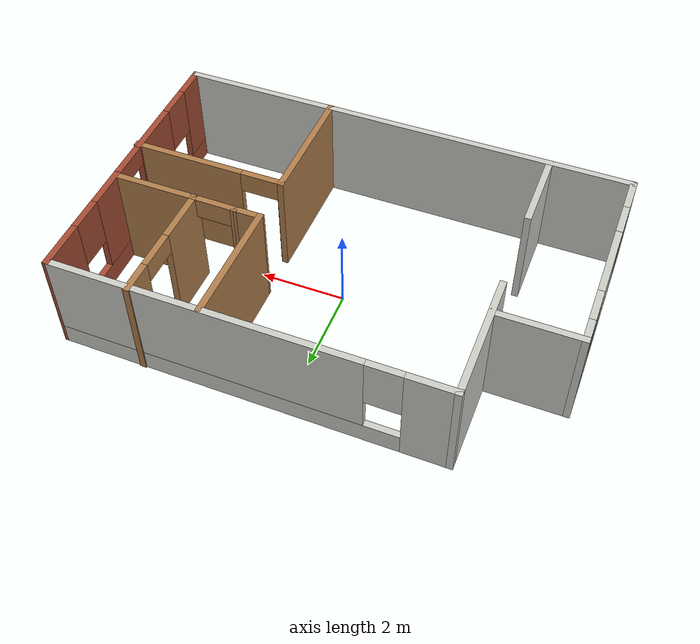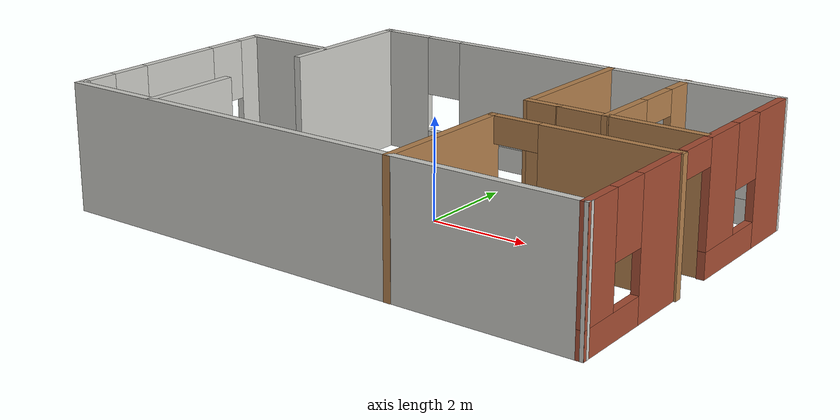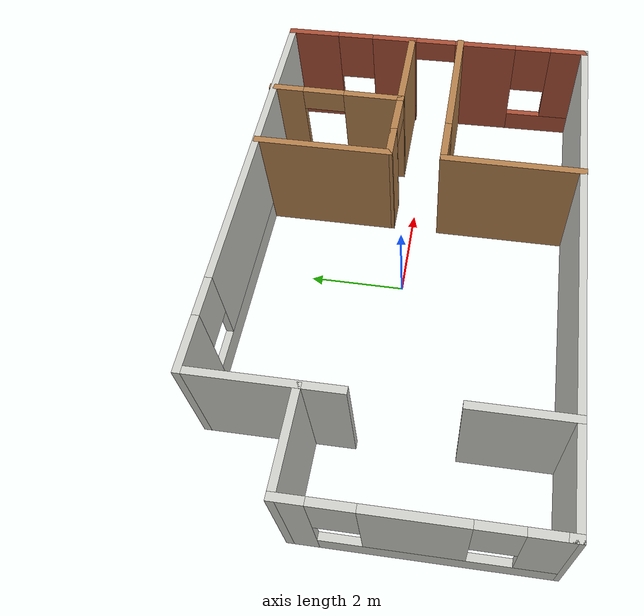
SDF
<?xml version='1.0'?>
<sdf version='1.7'>
  <model name='apartment'>
    <pose>-0.102938 -0.084341 0 0 -0 0</pose>
    <link name='Wall_0'>
      <collision name='Wall_0_Collision'>
        <geometry>
          <box>
            <size>3 0.15 2.5</size>
          </box>
        </geometry>
        <pose>0 0 1.25 0 -0 0</pose>
      </collision>
      <visual name='Wall_0_Visual'>
        <pose>0 0 1.25 0 -0 0</pose>
        <geometry>
          <box>
            <size>3 0.15 2.5</size>
          </box>
        </geometry>
        <material>
          <script>
            <uri>file://media/materials/scripts/gazebo.material</uri>
            <name>Gazebo/CeilingTiled</name>
          </script>
          <ambient>0.996078 0.47451 0.0196078 1</ambient>
        </material>
        <meta>
          <layer>0</layer>
        </meta>
      </visual>
      <pose>-3.54541 1.95227 0 0 -0 -1.5708</pose>
    </link>
    <link name='Wall_11'>
      <pose>5.36447 -0.008648 0 0 -0 -1.55311</pose>
      <visual name='Wall_11_Visual_0'>
        <pose>-2.88062 0 1.25 0 -0 0</pose>
        <geometry>
          <box>
            <size>1.16165 0.15 2.5</size>
          </box>
        </geometry>
        <material>
          <script>
            <uri>file://media/materials/scripts/gazebo.material</uri>
            <name>Gazebo/Bricks</name>
          </script>
          <ambient>1 1 1 1</ambient>
        </material>
        <meta>
          <layer>0</layer>
        </meta>
      </visual>
      <collision name='Wall_11_Collision_0'>
        <geometry>
          <box>
            <size>1.16165 0.15 2.5</size>
          </box>
        </geometry>
        <pose>-2.88062 0 1.25 0 -0 0</pose>
      </collision>
      <visual name='Wall_11_Visual_1'>
        <pose>1.12075 0 1.25 0 -0 0</pose>
        <geometry>
          <box>
            <size>1.38976 0.15 2.5</size>
          </box>
        </geometry>
        <material>
          <script>
            <uri>file://media/materials/scripts/gazebo.material</uri>
            <name>Gazebo/Bricks</name>
          </script>
          <ambient>1 1 1 1</ambient>
        </material>
        <meta>
          <layer>0</layer>
        </meta>
      </visual>
      <collision name='Wall_11_Collision_1'>
        <geometry>
          <box>
            <size>1.38976 0.15 2.5</size>
          </box>
        </geometry>
        <pose>1.12075 0 1.25 0 -0 0</pose>
      </collision>
      <visual name='Wall_11_Visual_2'>
        <pose>-1.38697 0 0.25 0 -0 0</pose>
        <geometry>
          <box>
            <size>1.82566 0.15 0.5</size>
          </box>
        </geometry>
        <material>
          <script>
            <uri>file://media/materials/scripts/gazebo.material</uri>
            <name>Gazebo/Bricks</name>
          </script>
          <ambient>1 1 1 1</ambient>
        </material>
        <meta>
          <layer>0</layer>
        </meta>
      </visual>
      <collision name='Wall_11_Collision_2'>
        <geometry>
          <box>
            <size>1.82566 0.15 0.5</size>
          </box>
        </geometry>
        <pose>-1.38697 0 0.25 0 -0 0</pose>
      </collision>
      <visual name='Wall_11_Visual_3'>
        <pose>2.63854 0 0.25 0 -0 0</pose>
        <geometry>
          <box>
            <size>1.64582 0.15 0.5</size>
          </box>
        </geometry>
        <material>
          <script>
            <uri>file://media/materials/scripts/gazebo.material</uri>
            <name>Gazebo/Bricks</name>
          </script>
          <ambient>1 1 1 1</ambient>
        </material>
        <meta>
          <layer>0</layer>
        </meta>
      </visual>
      <collision name='Wall_11_Collision_3'>
        <geometry>
          <box>
            <size>1.64582 0.15 0.5</size>
          </box>
        </geometry>
        <pose>2.63854 0 0.25 0 -0 0</pose>
      </collision>
      <visual name='Wall_11_Visual_4'>
        <pose>-0.986965 0 1.5 0 -0 0</pose>
        <geometry>
          <box>
            <size>1.02566 0.15 2</size>
          </box>
        </geometry>
        <material>
          <script>
            <uri>file://media/materials/scripts/gazebo.material</uri>
            <name>Gazebo/Bricks</name>
          </script>
          <ambient>1 1 1 1</ambient>
        </material>
        <meta>
          <layer>0</layer>
        </meta>
      </visual>
      <collision name='Wall_11_Collision_4'>
        <geometry>
          <box>
            <size>1.02566 0.15 2</size>
          </box>
        </geometry>
        <pose>-0.986965 0 1.5 0 -0 0</pose>
      </collision>
      <visual name='Wall_11_Visual_5'>
        <pose>-0.986965 0 1.5 0 -0 0</pose>
        <geometry>
          <box>
            <size>1.02566 0.15 2</size>
          </box>
        </geometry>
        <material>
          <script>
            <uri>file://media/materials/scripts/gazebo.material</uri>
            <name>Gazebo/Bricks</name>
          </script>
          <ambient>1 1 1 1</ambient>
        </material>
        <meta>
          <layer>0</layer>
        </meta>
      </visual>
      <collision name='Wall_11_Collision_5'>
        <geometry>
          <box>
            <size>1.02566 0.15 2</size>
          </box>
        </geometry>
        <pose>-0.986965 0 1.5 0 -0 0</pose>
      </collision>
      <visual name='Wall_11_Visual_6'>
        <pose>3.03854 0 1.5 0 -0 0</pose>
        <geometry>
          <box>
            <size>0.845819 0.15 2</size>
          </box>
        </geometry>
        <material>
          <script>
            <uri>file://media/materials/scripts/gazebo.material</uri>
            <name>Gazebo/Bricks</name>
          </script>
          <ambient>1 1 1 1</ambient>
        </material>
        <meta>
          <layer>0</layer>
        </meta>
      </visual>
      <collision name='Wall_11_Collision_6'>
        <geometry>
          <box>
            <size>0.845819 0.15 2</size>
          </box>
        </geometry>
        <pose>3.03854 0 1.5 0 -0 0</pose>
      </collision>
      <visual name='Wall_11_Visual_7'>
        <pose>-1.89979 0 1.9 0 -0 0</pose>
        <geometry>
          <box>
            <size>0.8 0.15 1.2</size>
          </box>
        </geometry>
        <material>
          <script>
            <uri>file://media/materials/scripts/gazebo.material</uri>
            <name>Gazebo/Bricks</name>
          </script>
          <ambient>1 1 1 1</ambient>
        </material>
        <meta>
          <layer>0</layer>
        </meta>
      </visual>
      <collision name='Wall_11_Collision_7'>
        <geometry>
          <box>
            <size>0.8 0.15 1.2</size>
          </box>
        </geometry>
        <pose>-1.89979 0 1.9 0 -0 0</pose>
      </collision>
      <visual name='Wall_11_Visual_8'>
        <pose>2.21563 0 1.9 0 -0 0</pose>
        <geometry>
          <box>
            <size>0.8 0.15 1.2</size>
          </box>
        </geometry>
        <material>
          <script>
            <uri>file://media/materials/scripts/gazebo.material</uri>
            <name>Gazebo/Bricks</name>
          </script>
          <ambient>1 1 1 1</ambient>
        </material>
        <meta>
          <layer>0</layer>
        </meta>
      </visual>
      <collision name='Wall_11_Collision_8'>
        <geometry>
          <box>
            <size>0.8 0.15 1.2</size>
          </box>
        </geometry>
        <pose>2.21563 0 1.9 0 -0 0</pose>
      </collision>
      <visual name='Wall_11_Visual_9'>
        <pose>-0.024136 0 2.25 0 -0 0</pose>
        <geometry>
          <box>
            <size>0.9 0.15 0.5</size>
          </box>
        </geometry>
        <material>
          <script>
            <uri>file://media/materials/scripts/gazebo.material</uri>
            <name>Gazebo/Bricks</name>
          </script>
          <ambient>1 1 1 1</ambient>
        </material>
        <meta>
          <layer>0</layer>
        </meta>
      </visual>
      <collision name='Wall_11_Collision_9'>
        <geometry>
          <box>
            <size>0.9 0.15 0.5</size>
          </box>
        </geometry>
        <pose>-0.024136 0 2.25 0 -0 0</pose>
      </collision>
      <visual name='Wall_11_Visual_10'>
        <pose>-0.024136 0 2.25 0 -0 0</pose>
        <geometry>
          <box>
            <size>0.9 0.15 0.5</size>
          </box>
        </geometry>
        <material>
          <script>
            <uri>file://media/materials/scripts/gazebo.material</uri>
            <name>Gazebo/Bricks</name>
          </script>
          <ambient>1 1 1 1</ambient>
        </material>
        <meta>
          <layer>0</layer>
        </meta>
      </visual>
      <collision name='Wall_11_Collision_10'>
        <geometry>
          <box>
            <size>0.9 0.15 0.5</size>
          </box>
        </geometry>
        <pose>-0.024136 0 2.25 0 -0 0</pose>
      </collision>
    </link>
    <link name='Wall_13'>
      <collision name='Wall_13_Collision'>
        <geometry>
          <box>
            <size>2.92929 0.15 2.5</size>
          </box>
        </geometry>
        <pose>0 0 1.25 0 -0 0</pose>
      </collision>
      <visual name='Wall_13_Visual'>
        <pose>0 0 1.25 0 -0 0</pose>
        <geometry>
          <box>
            <size>2.92929 0.15 2.5</size>
          </box>
        </geometry>
        <material>
          <script>
            <uri>file://media/materials/scripts/gazebo.material</uri>
            <name>Gazebo/Wood</name>
          </script>
          <ambient>1 1 1 1</ambient>
        </material>
        <meta>
          <layer>0</layer>
        </meta>
      </visual>
      <pose>1.80753 1.9642 0 0 -0 -1.56862</pose>
    </link>
    <link name='Wall_14'>
      <collision name='Wall_14_Collision'>
        <geometry>
          <box>
            <size>0.75 0.15 2.5</size>
          </box>
        </geometry>
        <pose>0 0 1.25 0 -0 0</pose>
      </collision>
      <visual name='Wall_14_Visual'>
        <pose>0 0 1.25 0 -0 0</pose>
        <geometry>
          <box>
            <size>0.75 0.15 2.5</size>
          </box>
        </geometry>
        <material>
          <script>
            <uri>file://media/materials/scripts/gazebo.material</uri>
            <name>Gazebo/Wood</name>
          </script>
          <ambient>1 1 1 1</ambient>
        </material>
        <meta>
          <layer>0</layer>
        </meta>
      </visual>
      <pose>2.11056 0.574561 0 0 -0 0</pose>
    </link>
    <link name='Wall_17'>
      <pose>3.40242 1.98351 0 0 -0 -1.5708</pose>
      <visual name='Wall_17_Visual_0'>
        <pose>-1.11383 0 1.25 0 -0 0</pose>
        <geometry>
          <box>
            <size>0.760857 0.15 2.5</size>
          </box>
        </geometry>
        <material>
          <script>
            <uri>file://media/materials/scripts/gazebo.material</uri>
            <name>Gazebo/Wood</name>
          </script>
          <ambient>1 1 1 1</ambient>
        </material>
        <meta>
          <layer>0</layer>
        </meta>
      </visual>
      <collision name='Wall_17_Collision_0'>
        <geometry>
          <box>
            <size>0.760857 0.15 2.5</size>
          </box>
        </geometry>
        <pose>-1.11383 0 1.25 0 -0 0</pose>
      </collision>
      <visual name='Wall_17_Visual_1'>
        <pose>0.830428 0 1.25 0 -0 0</pose>
        <geometry>
          <box>
            <size>1.32767 0.15 2.5</size>
          </box>
        </geometry>
        <material>
          <script>
            <uri>file://media/materials/scripts/gazebo.material</uri>
            <name>Gazebo/Wood</name>
          </script>
          <ambient>1 1 1 1</ambient>
        </material>
        <meta>
          <layer>0</layer>
        </meta>
      </visual>
      <collision name='Wall_17_Collision_1'>
        <geometry>
          <box>
            <size>1.32767 0.15 2.5</size>
          </box>
        </geometry>
        <pose>0.830428 0 1.25 0 -0 0</pose>
      </collision>
      <visual name='Wall_17_Visual_2'>
        <pose>-0.283405 0 2.25 0 -0 0</pose>
        <geometry>
          <box>
            <size>0.9 0.15 0.5</size>
          </box>
        </geometry>
        <material>
          <script>
            <uri>file://media/materials/scripts/gazebo.material</uri>
            <name>Gazebo/Wood</name>
          </script>
          <ambient>1 1 1 1</ambient>
        </material>
        <meta>
          <layer>0</layer>
        </meta>
      </visual>
      <collision name='Wall_17_Collision_2'>
        <geometry>
          <box>
            <size>0.9 0.15 0.5</size>
          </box>
        </geometry>
        <pose>-0.283405 0 2.25 0 -0 0</pose>
      </collision>
    </link>
    <link name='Wall_18'>
      <collision name='Wall_18_Collision'>
        <geometry>
          <box>
            <size>2 0.15 2.5</size>
          </box>
        </geometry>
        <pose>0 0 1.25 0 -0 0</pose>
      </collision>
      <visual name='Wall_18_Visual'>
        <pose>0 0 1.25 0 -0 0</pose>
        <geometry>
          <box>
            <size>2 0.15 2.5</size>
          </box>
        </geometry>
        <material>
          <script>
            <uri>file://media/materials/scripts/gazebo.material</uri>
            <name>Gazebo/Wood</name>
          </script>
          <ambient>1 1 1 1</ambient>
        </material>
        <meta>
          <layer>0</layer>
        </meta>
      </visual>
      <pose>4.32742 0.564674 0 0 -0 0</pose>
    </link>
    <link name='Wall_2'>
      <collision name='Wall_2_Collision'>
        <geometry>
          <box>
            <size>2 0.15 2.5</size>
          </box>
        </geometry>
        <pose>0 0 1.25 0 -0 0</pose>
      </collision>
      <visual name='Wall_2_Visual'>
        <pose>0 0 1.25 0 -0 0</pose>
        <geometry>
          <box>
            <size>2 0.15 2.5</size>
          </box>
        </geometry>
        <material>
          <script>
            <uri>file://media/materials/scripts/gazebo.material</uri>
            <name>Gazebo/CeilingTiled</name>
          </script>
          <ambient>0.921569 0.807843 0.615686 1</ambient>
        </material>
        <meta>
          <layer>0</layer>
        </meta>
      </visual>
      <pose>-4.50066 1.30543 0 0 -0 3.14159</pose>
    </link>
    <link name='Wall_20'>
      <collision name='Wall_20_Collision'>
        <geometry>
          <box>
            <size>2 0.15 2.5</size>
          </box>
        </geometry>
        <pose>0 0 1.25 0 -0 0</pose>
      </collision>
      <visual name='Wall_20_Visual'>
        <pose>0 0 1.25 0 -0 0</pose>
        <geometry>
          <box>
            <size>2 0.15 2.5</size>
          </box>
        </geometry>
        <material>
          <script>
            <uri>file://media/materials/scripts/gazebo.material</uri>
            <name>Gazebo/CeilingTiled</name>
          </script>
          <ambient>0.996078 0.47451 0.0196078 1</ambient>
        </material>
        <meta>
          <layer>0</layer>
        </meta>
      </visual>
      <pose>-3.53546 -2.46789 0 0 -0 1.5708</pose>
    </link>
    <link name='Wall_22'>
      <collision name='Wall_22_Collision'>
        <geometry>
          <box>
            <size>3 0.15 2.5</size>
          </box>
        </geometry>
        <pose>0 0 1.25 0 -0 0</pose>
      </collision>
      <visual name='Wall_22_Visual'>
        <pose>0 0 1.25 0 -0 0</pose>
        <geometry>
          <box>
            <size>3 0.15 2.5</size>
          </box>
        </geometry>
        <material>
          <script>
            <uri>file://media/materials/scripts/gazebo.material</uri>
            <name>Gazebo/Wood</name>
          </script>
          <ambient>1 1 1 1</ambient>
        </material>
        <meta>
          <layer>0</layer>
        </meta>
      </visual>
      <pose>1.81362 -1.97778 0 0 -0 1.5708</pose>
    </link>
    <link name='Wall_23'>
      <pose>3.61362 -0.552776 0 0 -0 0</pose>
      <visual name='Wall_23_Visual_0'>
        <pose>-1.80184 0 1.25 0 -0 0</pose>
        <geometry>
          <box>
            <size>0.146318 0.15 2.5</size>
          </box>
        </geometry>
        <material>
          <script>
            <uri>file://media/materials/scripts/gazebo.material</uri>
            <name>Gazebo/Wood</name>
          </script>
          <ambient>1 1 1 1</ambient>
        </material>
        <meta>
          <layer>0</layer>
        </meta>
      </visual>
      <collision name='Wall_23_Collision_0'>
        <geometry>
          <box>
            <size>0.146318 0.15 2.5</size>
          </box>
        </geometry>
        <pose>-1.80184 0 1.25 0 -0 0</pose>
      </collision>
      <visual name='Wall_23_Visual_1'>
        <pose>0.523159 0 1.25 0 -0 0</pose>
        <geometry>
          <box>
            <size>2.70368 0.15 2.5</size>
          </box>
        </geometry>
        <material>
          <script>
            <uri>file://media/materials/scripts/gazebo.material</uri>
            <name>Gazebo/Wood</name>
          </script>
          <ambient>1 1 1 1</ambient>
        </material>
        <meta>
          <layer>0</layer>
        </meta>
      </visual>
      <collision name='Wall_23_Collision_1'>
        <geometry>
          <box>
            <size>2.70368 0.15 2.5</size>
          </box>
        </geometry>
        <pose>0.523159 0 1.25 0 -0 0</pose>
      </collision>
      <visual name='Wall_23_Visual_2'>
        <pose>-1.27868 0 2.25 0 -0 0</pose>
        <geometry>
          <box>
            <size>0.9 0.15 0.5</size>
          </box>
        </geometry>
        <material>
          <script>
            <uri>file://media/materials/scripts/gazebo.material</uri>
            <name>Gazebo/Wood</name>
          </script>
          <ambient>1 1 1 1</ambient>
        </material>
        <meta>
          <layer>0</layer>
        </meta>
      </visual>
      <collision name='Wall_23_Collision_2'>
        <geometry>
          <box>
            <size>0.9 0.15 0.5</size>
          </box>
        </geometry>
        <pose>-1.27868 0 2.25 0 -0 0</pose>
      </collision>
    </link>
    <link name='Wall_25'>
      <pose>2.90649 0.569617 0 0 -0 -0.009968</pose>
      <visual name='Wall_25_Visual_0'>
        <pose>-0.52434 0 1.25 0 -0 0</pose>
        <geometry>
          <box>
            <size>0.09324 0.15 2.5</size>
          </box>
        </geometry>
        <material>
          <script>
            <uri>file://media/materials/scripts/gazebo.material</uri>
            <name>Gazebo/Wood</name>
          </script>
          <ambient>1 1 1 1</ambient>
        </material>
        <meta>
          <layer>0</layer>
        </meta>
      </visual>
      <collision name='Wall_25_Collision_0'>
        <geometry>
          <box>
            <size>0.09324 0.15 2.5</size>
          </box>
        </geometry>
        <pose>-0.52434 0 1.25 0 -0 0</pose>
      </collision>
      <visual name='Wall_25_Visual_1'>
        <pose>0.49662 0 1.25 0 -0 0</pose>
        <geometry>
          <box>
            <size>0.148679 0.15 2.5</size>
          </box>
        </geometry>
        <material>
          <script>
            <uri>file://media/materials/scripts/gazebo.material</uri>
            <name>Gazebo/Wood</name>
          </script>
          <ambient>1 1 1 1</ambient>
        </material>
        <meta>
          <layer>0</layer>
        </meta>
      </visual>
      <collision name='Wall_25_Collision_1'>
        <geometry>
          <box>
            <size>0.148679 0.15 2.5</size>
          </box>
        </geometry>
        <pose>0.49662 0 1.25 0 -0 0</pose>
      </collision>
      <visual name='Wall_25_Visual_2'>
        <pose>-0.02772 0 2.25 0 -0 0</pose>
        <geometry>
          <box>
            <size>0.9 0.15 0.5</size>
          </box>
        </geometry>
        <material>
          <script>
            <uri>file://media/materials/scripts/gazebo.material</uri>
            <name>Gazebo/Wood</name>
          </script>
          <ambient>1 1 1 1</ambient>
        </material>
        <meta>
          <layer>0</layer>
        </meta>
      </visual>
      <collision name='Wall_25_Collision_2'>
        <geometry>
          <box>
            <size>0.9 0.15 0.5</size>
          </box>
        </geometry>
        <pose>-0.02772 0 2.25 0 -0 0</pose>
      </collision>
    </link>
    <link name='Wall_3'>
      <pose>-5.42566 -0.994565 0 0 -0 -1.5708</pose>
      <visual name='Wall_3_Visual_0'>
        <pose>-2.06996 0 1.25 0 -0 0</pose>
        <geometry>
          <box>
            <size>0.610084 0.15 2.5</size>
          </box>
        </geometry>
        <material>
          <script>
            <uri>file://media/materials/scripts/gazebo.material</uri>
            <name>Gazebo/CeilingTiled</name>
          </script>
          <ambient>1 1 1 1</ambient>
        </material>
        <meta>
          <layer>0</layer>
        </meta>
      </visual>
      <collision name='Wall_3_Collision_0'>
        <geometry>
          <box>
            <size>0.610084 0.15 2.5</size>
          </box>
        </geometry>
        <pose>-2.06996 0 1.25 0 -0 0</pose>
      </collision>
      <visual name='Wall_3_Visual_1'>
        <pose>0.305042 0 0.25 0 -0 0</pose>
        <geometry>
          <box>
            <size>4.13992 0.15 0.5</size>
          </box>
        </geometry>
        <material>
          <script>
            <uri>file://media/materials/scripts/gazebo.material</uri>
            <name>Gazebo/CeilingTiled</name>
          </script>
          <ambient>1 1 1 1</ambient>
        </material>
        <meta>
          <layer>0</layer>
        </meta>
      </visual>
      <collision name='Wall_3_Collision_1'>
        <geometry>
          <box>
            <size>4.13992 0.15 0.5</size>
          </box>
        </geometry>
        <pose>0.305042 0 0.25 0 -0 0</pose>
      </collision>
      <visual name='Wall_3_Visual_2'>
        <pose>-0.07658 0 1.5 0 -0 0</pose>
        <geometry>
          <box>
            <size>1.77667 0.15 2</size>
          </box>
        </geometry>
        <material>
          <script>
            <uri>file://media/materials/scripts/gazebo.material</uri>
            <name>Gazebo/CeilingTiled</name>
          </script>
          <ambient>1 1 1 1</ambient>
        </material>
        <meta>
          <layer>0</layer>
        </meta>
      </visual>
      <collision name='Wall_3_Collision_2'>
        <geometry>
          <box>
            <size>1.77667 0.15 2</size>
          </box>
        </geometry>
        <pose>-0.07658 0 1.5 0 -0 0</pose>
      </collision>
      <visual name='Wall_3_Visual_3'>
        <pose>1.99338 0 1.5 0 -0 0</pose>
        <geometry>
          <box>
            <size>0.763243 0.15 2</size>
          </box>
        </geometry>
        <material>
          <script>
            <uri>file://media/materials/scripts/gazebo.material</uri>
            <name>Gazebo/CeilingTiled</name>
          </script>
          <ambient>1 1 1 1</ambient>
        </material>
        <meta>
          <layer>0</layer>
        </meta>
      </visual>
      <collision name='Wall_3_Collision_3'>
        <geometry>
          <box>
            <size>0.763243 0.15 2</size>
          </box>
        </geometry>
        <pose>1.99338 0 1.5 0 -0 0</pose>
      </collision>
      <visual name='Wall_3_Visual_4'>
        <pose>-1.36492 0 1.9 0 -0 0</pose>
        <geometry>
          <box>
            <size>0.8 0.15 1.2</size>
          </box>
        </geometry>
        <material>
          <script>
            <uri>file://media/materials/scripts/gazebo.material</uri>
            <name>Gazebo/CeilingTiled</name>
          </script>
          <ambient>1 1 1 1</ambient>
        </material>
        <meta>
          <layer>0</layer>
        </meta>
      </visual>
      <collision name='Wall_3_Collision_4'>
        <geometry>
          <box>
            <size>0.8 0.15 1.2</size>
          </box>
        </geometry>
        <pose>-1.36492 0 1.9 0 -0 0</pose>
      </collision>
      <visual name='Wall_3_Visual_5'>
        <pose>1.21176 0 1.9 0 -0 0</pose>
        <geometry>
          <box>
            <size>0.8 0.15 1.2</size>
          </box>
        </geometry>
        <material>
          <script>
            <uri>file://media/materials/scripts/gazebo.material</uri>
            <name>Gazebo/CeilingTiled</name>
          </script>
          <ambient>1 1 1 1</ambient>
        </material>
        <meta>
          <layer>0</layer>
        </meta>
      </visual>
      <collision name='Wall_3_Collision_5'>
        <geometry>
          <box>
            <size>0.8 0.15 1.2</size>
          </box>
        </geometry>
        <pose>1.21176 0 1.9 0 -0 0</pose>
      </collision>
    </link>
    <link name='Wall_4'>
      <collision name='Wall_4_Collision'>
        <geometry>
          <box>
            <size>0.15 0.15 2.5</size>
          </box>
        </geometry>
        <pose>0 0 1.25 0 -0 0</pose>
      </collision>
      <visual name='Wall_4_Visual'>
        <pose>0 0 1.25 0 -0 0</pose>
        <geometry>
          <box>
            <size>0.15 0.15 2.5</size>
          </box>
        </geometry>
        <material>
          <script>
            <uri>file://media/materials/scripts/gazebo.material</uri>
            <name>Gazebo/CeilingTiled</name>
          </script>
          <ambient>1 1 1 1</ambient>
        </material>
        <meta>
          <layer>0</layer>
        </meta>
      </visual>
      <pose>-5.42566 -3.29456 0 0 -0 0</pose>
    </link>
    <link name='Wall_5'>
      <collision name='Wall_5_Collision'>
        <geometry>
          <box>
            <size>0.25 0.15 2.5</size>
          </box>
        </geometry>
        <pose>0 0 1.25 0 -0 0</pose>
      </collision>
      <visual name='Wall_5_Visual'>
        <pose>0 0 1.25 0 -0 0</pose>
        <geometry>
          <box>
            <size>0.25 0.15 2.5</size>
          </box>
        </geometry>
        <material>
          <script>
            <uri>file://media/materials/scripts/gazebo.material</uri>
            <name>Gazebo/CeilingTiled</name>
          </script>
          <ambient>1 1 1 1</ambient>
        </material>
        <meta>
          <layer>0</layer>
        </meta>
      </visual>
      <pose>-5.42566 -3.34456 0 0 -0 -1.5708</pose>
    </link>
    <link name='Wall_6'>
      <collision name='Wall_6_Collision'>
        <geometry>
          <box>
            <size>11 0.15 2.5</size>
          </box>
        </geometry>
        <pose>0 0 1.25 0 -0 0</pose>
      </collision>
      <visual name='Wall_6_Visual'>
        <pose>0 0 1.25 0 -0 0</pose>
        <geometry>
          <box>
            <size>11 0.15 2.5</size>
          </box>
        </geometry>
        <material>
          <script>
            <uri>file://media/materials/scripts/gazebo.material</uri>
            <name>Gazebo/CeilingTiled</name>
          </script>
          <ambient>1 1 1 1</ambient>
        </material>
        <meta>
          <layer>0</layer>
        </meta>
      </visual>
      <pose>-0.000657 -3.39457 0 0 -0 0</pose>
    </link>
    <link name='Wall_9'>
      <pose>0.879589 3.37727 0 0 -0 0</pose>
      <visual name='Wall_9_Visual_0'>
        <pose>-3.93169 0 1.25 0 -0 0</pose>
        <geometry>
          <box>
            <size>1.13661 0.15 2.5</size>
          </box>
        </geometry>
        <material>
          <script>
            <uri>file://media/materials/scripts/gazebo.material</uri>
            <name>Gazebo/CeilingTiled</name>
          </script>
          <ambient>0.921569 0.807843 0.615686 1</ambient>
        </material>
        <meta>
          <layer>0</layer>
        </meta>
      </visual>
      <collision name='Wall_9_Collision_0'>
        <geometry>
          <box>
            <size>1.13661 0.15 2.5</size>
          </box>
        </geometry>
        <pose>-3.93169 0 1.25 0 -0 0</pose>
      </collision>
      <visual name='Wall_9_Visual_1'>
        <pose>0.568306 0 0.25 0 -0 0</pose>
        <geometry>
          <box>
            <size>7.86339 0.15 0.5</size>
          </box>
        </geometry>
        <material>
          <script>
            <uri>file://media/materials/scripts/gazebo.material</uri>
            <name>Gazebo/CeilingTiled</name>
          </script>
          <ambient>0.921569 0.807843 0.615686 1</ambient>
        </material>
        <meta>
          <layer>0</layer>
        </meta>
      </visual>
      <collision name='Wall_9_Collision_1'>
        <geometry>
          <box>
            <size>7.86339 0.15 0.5</size>
          </box>
        </geometry>
        <pose>0.568306 0 0.25 0 -0 0</pose>
      </collision>
      <visual name='Wall_9_Visual_2'>
        <pose>0.968306 0 1.5 0 -0 0</pose>
        <geometry>
          <box>
            <size>7.06339 0.15 2</size>
          </box>
        </geometry>
        <material>
          <script>
            <uri>file://media/materials/scripts/gazebo.material</uri>
            <name>Gazebo/CeilingTiled</name>
          </script>
          <ambient>0.921569 0.807843 0.615686 1</ambient>
        </material>
        <meta>
          <layer>0</layer>
        </meta>
      </visual>
      <collision name='Wall_9_Collision_2'>
        <geometry>
          <box>
            <size>7.06339 0.15 2</size>
          </box>
        </geometry>
        <pose>0.968306 0 1.5 0 -0 0</pose>
      </collision>
      <visual name='Wall_9_Visual_3'>
        <pose>-2.96339 0 1.9 0 -0 0</pose>
        <geometry>
          <box>
            <size>0.8 0.15 1.2</size>
          </box>
        </geometry>
        <material>
          <script>
            <uri>file://media/materials/scripts/gazebo.material</uri>
            <name>Gazebo/CeilingTiled</name>
          </script>
          <ambient>0.921569 0.807843 0.615686 1</ambient>
        </material>
        <meta>
          <layer>0</layer>
        </meta>
      </visual>
      <collision name='Wall_9_Collision_3'>
        <geometry>
          <box>
            <size>0.8 0.15 1.2</size>
          </box>
        </geometry>
        <pose>-2.96339 0 1.9 0 -0 0</pose>
      </collision>
    </link>
    <static>1</static>
  </model>
</sdf>
